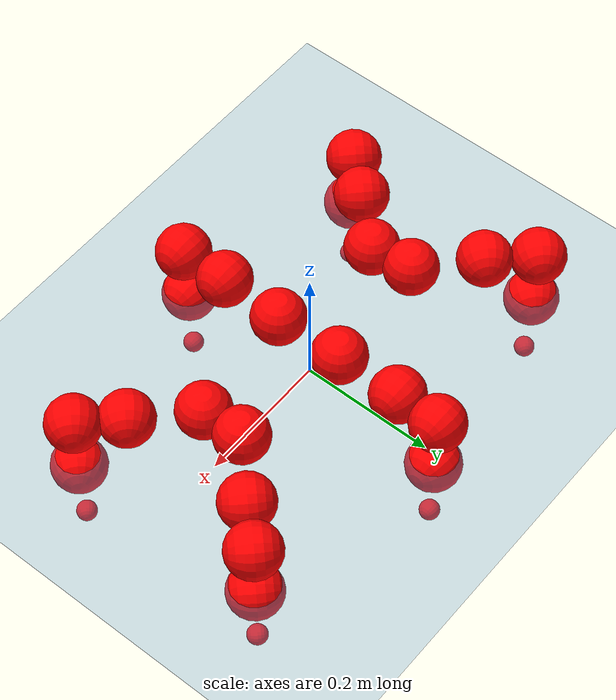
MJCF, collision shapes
<mujoco model="Golem">
  <compiler angle="radian" assetdir="assets" balanceinertia="true" inertiafromgeom="false"/>

  <option timestep="0.005" density="1.2" viscosity="2e-05"/>

  <size nkey="1"/>

  <visual>
    <quality shadowsize="8192"/>
    <map shadowclip="0.5"/>
  </visual>

  <default>
    <default class="/">
      <joint armature="0.01" damping="0.01" frictionloss="0.01"/>
      <geom contype="0" conaffinity="0" group="1" solref="-1000 -80"/>
      <site size="0.01 0.005 0.005" group="5"/>
      <general forcelimited="true" biastype="affine" gainprm="25" biasprm="0 -25 -0.5"/>
      <default class="visual">
        <geom type="mesh" group="2"/>
      </default>
      <default class="collision">
        <geom group="3"/>
      </default>
      <default class="foot">
        <geom size="0.01 0 0" condim="6" group="4" priority="1" solimp="0.015 1 0.01"/>
      </default>
      <default class="reward_collision_sphere">
        <geom group="5" rgba="1 0 0 1"/>
      </default>
    </default>
  </default>

  <asset>
    <texture type="skybox" colorspace="auto" name="//unnamed_texture_0" builtin="gradient" rgb1="0.95 0.95 0.95" rgb2="0.95 0.95 0.95" width="100" height="600"/>
    <texture type="2d" colorspace="auto" name="texplane" builtin="checker" rgb1="0.345 0.575 0.748" rgb2="0.345 0.575 0.748" markrgb="1 1 1" width="512" height="512"/>
    <material name="MatPlane" class="/" texture="texplane" texuniform="true" texrepeat="2 2" specular="0.9"/>
    <mesh name="body" class="/" file="body.stl" scale="0.001 0.001 0.001"/>
    <mesh name="coxa" class="/" file="coxa.stl" scale="0.001 0.001 0.001"/>
    <mesh name="femur" class="/" file="femur.stl" scale="0.001 0.001 0.001"/>
    <mesh name="tibia" class="/" file="tibia.stl" scale="0.001 0.001 0.001"/>
    <mesh name="tarsus" class="/" file="tarsus.stl" scale="0.001 0.001 0.001"/>
  </asset>

  <worldbody>
    <geom name="floor" class="/" size="100 100 0.125" type="plane" group="0" material="MatPlane"/>
    <light name="toplight_shadow" class="/" pos="0 0 5" dir="0.0990148 0.0990148 -0.990148" type="directional" ambient="0.04 0.04 0.04" diffuse="0.55 0.55 0.55" specular="0.12 0.12 0.12"/>
    <light name="toplight_fill" class="/" pos="0 0 5" dir="0.0990148 0.0990148 -0.990148" type="directional" castshadow="false" ambient="0.04 0.04 0.04" diffuse="0.3 0.3 0.3" specular="0.08 0.08 0.08"/>
    <body name="trunk" pos="-0.00247828 -0.00103721 -0.00117699" quat="1 -1.88328e-08 -1.07496e-05 2.90608e-05">
      <inertial pos="0.00311359 -0.000692182 -0.00022901" quat="0.999905 -0.00966186 -0.00794613 -0.0057068" mass="3.79273" diaginertia="0.0179283 0.0013285 0.0263354"/>
      <joint name="//unnamed_joint_0" type="free"/>
      <geom name="//unnamed_geom_1" class="/" pos="0 0 0.0774815" quat="1 0 0 0" type="mesh" rgba="0.9 0.9 0.9 1" mesh="body"/>
      <site name="imu" class="/" pos="0.141531 0.00486707 0.126096" size="0.0100141"/>
      <camera name="track" class="/" pos="0 -1.32995 0" quat="0.707107 0.707107 0 0" mode="trackcom"/>
      <camera name="ego_camera" class="/" pos="0.146719 0 0.121065" quat="-0.5 -0.5 0.5 0.5"/>
      <body name="coxa_RR" pos="-0.197604 -0.0547255 0.0765662" quat="0.382776 0.000131973 -9.22975e-06 -0.923841">
        <inertial pos="-0.000312677 -0.0013074 -0.000488081" quat="1 0.000651476 0.000414061 9.43244e-05" mass="0.201209" diaginertia="0.0175937 0.00132812 0.0263713"/>
        <joint name="coxa_joint_RR" class="/" pos="0 0 0" axis="-0.00144193 -0.000676144 -0.999999" stiffness="0.00773018" range="-3.13467 3.08273" armature="0.00861842" damping="0.00311427" frictionloss="0.00962711"/>
        <geom name="//unnamed_geom_2" class="/" type="mesh" rgba="0.2 0.2 0.2 1" mesh="coxa"/>
        <geom name="//unnamed_geom_3" class="reward_collision_sphere" size="0.0400565" pos="-0.0338583 0 0"/>
        <body name="femur_RR" pos="0.0647292 0.00279848 -0.00431855" quat="0.499903 -0.499978 0.500102 0.500017">
          <inertial pos="-0.000566926 0.00250054 -0.00275865" quat="0.999998 2.7934e-05 -0.00173453 -0.00102445" mass="0.203634" diaginertia="0.018559 0.00131881 0.0264026"/>
          <joint name="femur_joint_RR" class="/" pos="0 0 0" axis="0.000407713 0.00333543 -0.999994" range="-3.12517 3.10338" armature="0.00863845" damping="0.0109568" frictionloss="0.0114048"/>
          <geom name="//unnamed_geom_4" class="/" type="mesh" rgba="0.9 0.9 0.9 1" mesh="femur"/>
          <geom name="//unnamed_geom_5" class="reward_collision_sphere" size="0.0400565"/>
          <body name="tibia_RR" pos="-0.00013135 -0.0692069 0.00310776" quat="-0.000752094 0.999999 0.000917467 -0.000222307">
            <inertial pos="-0.00214988 -0.00254579 1.59405e-05" quat="0.999911 -0.00547256 0.0101552 -0.00677146" mass="0.201363" diaginertia="0.0177422 0.00131901 0.0262714"/>
            <joint name="tibia_joint_RR" class="/" pos="0 0 0" axis="-0.0106125 0.00595669 0.999926" stiffness="0.00933123" range="-3.16821 3.09594" armature="0.00877507" damping="0" frictionloss="0.00953466"/>
            <geom name="//unnamed_geom_6" class="/" type="mesh" rgba="0.2 0.2 0.2 1" mesh="tibia"/>
            <geom name="//unnamed_geom_7" class="reward_collision_sphere" size="0.0400565"/>
            <body name="tarsus_RR" pos="0.0997371 -0.00151952 -0.00268893" quat="1 -2.22547e-06 -0.000353159 -0.000126754">
              <inertial pos="0.0677615 0.002151 -0.0026049" quat="0.496513 0.508059 0.499288 0.496047" mass="0.200473" diaginertia="0.0183216 0.00133935 0.0259759"/>
              <joint name="tarsus_joint_RR" class="/" pos="0 0 0" axis="-0.00106449 -0.000569438 0.999999" stiffness="0.00153917" range="-3.15381 3.1323" armature="0.0115033" damping="0.00604464" frictionloss="0.0113044"/>
              <geom name="//unnamed_geom_8" class="/" type="mesh" rgba="0.9 0.9 0.9 1" mesh="tarsus"/>
              <geom name="foot_1" class="foot" size="0.00882656" pos="0.126404 0 0" quat="0 -0.707107 0 0.707107"/>
              <geom name="//unnamed_geom_10" class="reward_collision_sphere" size="0.0400565"/>
              <geom name="//unnamed_geom_11" class="reward_collision_sphere" size="0.0150212" pos="0.121326 0 0"/>
              <site name="foot_1" class="foot" pos="0.126404 0 0" quat="0 -0.707107 0 0.707107" size="0.0100141"/>
            </body>
          </body>
        </body>
      </body>
      <body name="coxa_RM" pos="0.000790158 -0.0883991 0.0772494" quat="0.707206 -0.000355194 0.000228319 -0.707008">
        <inertial pos="-0.00209304 0.000207676 -0.00201308" quat="0.999995 -0.000753305 0.00287409 0.000872108" mass="0.194713" diaginertia="0.0182207 0.00126606 0.0252127"/>
        <joint name="coxa_joint_RM" class="/" pos="0 0 0" axis="-0.000764811 -4.70809e-05 -1" range="-3.15522 3.12924" armature="0.00906877" damping="0.0195118" frictionloss="0.00986333"/>
        <geom name="//unnamed_geom_12" class="/" type="mesh" rgba="0.2 0.2 0.2 1" mesh="coxa"/>
        <geom name="//unnamed_geom_13" class="reward_collision_sphere" size="0.0400565" pos="-0.0338583 0 0"/>
        <body name="femur_RM" pos="0.0634152 -0.00154481 0.0024736" quat="0.49964 -0.500103 0.500766 0.49949">
          <inertial pos="0.00222242 -0.00240899 0.00193413" quat="0.999945 0.0056546 -0.0088133 -0.000558976" mass="0.207017" diaginertia="0.0189486 0.00129749 0.0271705"/>
          <joint name="femur_joint_RM" class="/" pos="0 0 0" axis="0.00156519 0.00505294 -0.999986" range="-3.13274 3.13096" armature="0.0097444" damping="0.00595175" frictionloss="0.00896241"/>
          <geom name="//unnamed_geom_14" class="/" type="mesh" rgba="0.9 0.9 0.9 1" mesh="femur"/>
          <geom name="//unnamed_geom_15" class="reward_collision_sphere" size="0.0400565"/>
          <body name="tibia_RM" pos="-0.00224375 -0.073433 0.0012503" quat="3.46733e-05 1 0.000125179 0.000189776">
            <inertial pos="-0.00200681 0.000339338 -0.000910236" quat="0.999998 -4.65789e-05 0.000429691 0.00191236" mass="0.204826" diaginertia="0.0184523 0.00131929 0.0273388"/>
            <joint name="tibia_joint_RM" class="/" pos="0 0 0" axis="-0.00341363 0.0131408 0.999908" range="-3.08422 3.1349" armature="0.0113034" damping="0.0049245" frictionloss="0.00951511"/>
            <geom name="//unnamed_geom_16" class="/" type="mesh" rgba="0.2 0.2 0.2 1" mesh="tibia"/>
            <geom name="//unnamed_geom_17" class="reward_collision_sphere" size="0.0400565"/>
            <body name="tarsus_RM" pos="0.0980945 -0.00160572 0.00343902" quat="0.999999 0.000897976 -0.000656579 0.000802911">
              <inertial pos="0.0699642 0.00126062 0.00226113" quat="0.49861 0.500249 0.501861 0.499274" mass="0.192059" diaginertia="0.0175898 0.00125952 0.0242988"/>
              <joint name="tarsus_joint_RM" class="/" pos="0 0 0" axis="-0.00276569 0.0141231 0.999896" range="-3.13339 3.13681" armature="0.0114225" damping="0.00965367" frictionloss="0.00986717"/>
              <geom name="//unnamed_geom_18" class="/" type="mesh" rgba="0.9 0.9 0.9 1" mesh="tarsus"/>
              <geom name="foot_2" class="foot" size="0.0108277" pos="0.126404 0 0" quat="0 -0.707107 0 0.707107"/>
              <geom name="//unnamed_geom_20" class="reward_collision_sphere" size="0.0400565"/>
              <geom name="//unnamed_geom_21" class="reward_collision_sphere" size="0.0150212" pos="0.121326 0 0"/>
              <site name="foot_2" class="foot" pos="0.126404 0 0" quat="0 -0.707107 0 0.707107" size="0.0100141"/>
            </body>
          </body>
        </body>
      </body>
      <body name="coxa_RF" pos="0.203879 -0.0578758 0.0776367" quat="0.923587 -0.00113447 0.000104995 -0.383388">
        <inertial pos="-0.00198095 0.000573744 0.00247169" quat="0.999903 0.00998587 -0.00813066 -0.00535244" mass="0.205064" diaginertia="0.0177176 0.00130139 0.0251678"/>
        <joint name="coxa_joint_RF" class="/" pos="0 0 0" axis="-0.00471496 0.00816469 -0.999956" range="-3.19541 3.13499" armature="0.0086327" damping="0.0225616" frictionloss="0.0114344"/>
        <geom name="//unnamed_geom_22" class="/" type="mesh" rgba="0.2 0.2 0.2 1" mesh="coxa"/>
        <geom name="//unnamed_geom_23" class="reward_collision_sphere" size="0.0400565" pos="-0.0338583 0 0"/>
        <body name="femur_RF" pos="0.0680271 0.000390365 -0.00339731" quat="0.500649 -0.500074 0.50011 0.499166">
          <inertial pos="0.000746111 -0.00270287 -0.000670681" quat="0.999993 0.00284237 -0.000621004 -0.00219239" mass="0.19374" diaginertia="0.0185109 0.00126792 0.0249184"/>
          <joint name="femur_joint_RF" class="/" pos="0 0 0" axis="-0.00285135 0.00265527 -0.999992" stiffness="0.00053413" range="-3.09711 3.10797" armature="0.00986549" damping="0" frictionloss="0.00962461"/>
          <geom name="//unnamed_geom_24" class="/" type="mesh" rgba="0.9 0.9 0.9 1" mesh="femur"/>
          <geom name="//unnamed_geom_25" class="reward_collision_sphere" size="0.0400565"/>
          <body name="tibia_RF" pos="-0.000546504 -0.0701694 0.00108002" quat="-3.50346e-05 1 1.73313e-06 -1.26084e-05">
            <inertial pos="-0.00141756 -0.000328563 0.000127161" quat="0.999988 0.000319329 -0.0019883 -0.00455956" mass="0.191365" diaginertia="0.0170947 0.00125249 0.0251455"/>
            <joint name="tibia_joint_RF" class="/" pos="0 0 0" axis="0.0127463 -0.00659636 0.999897" range="-3.08385 3.12086" armature="0.00977306" damping="0" frictionloss="0.0114215"/>
            <geom name="//unnamed_geom_26" class="/" type="mesh" rgba="0.2 0.2 0.2 1" mesh="tibia"/>
            <geom name="//unnamed_geom_27" class="reward_collision_sphere" size="0.0400565"/>
            <body name="tarsus_RF" pos="0.0996356 0.000707529 -0.00185269" quat="0.999999 0.00132571 0.000335092 -0.000133295">
              <inertial pos="0.0659358 -0.00285436 0.000863891" quat="0.498575 0.499679 0.500928 0.500815" mass="0.194996" diaginertia="0.0177394 0.00130125 0.0248086"/>
              <joint name="tarsus_joint_RF" class="/" pos="0 0 0" axis="0.0141831 -0.000981644 0.999899" range="-3.15567 3.1489" armature="0.00941735" damping="0" frictionloss="0.00890861"/>
              <geom name="//unnamed_geom_28" class="/" type="mesh" rgba="0.9 0.9 0.9 1" mesh="tarsus"/>
              <geom name="foot_3" class="foot" size="0.00991947" pos="0.126404 0 0" quat="0 -0.707107 0 0.707107"/>
              <geom name="//unnamed_geom_30" class="reward_collision_sphere" size="0.0400565"/>
              <geom name="//unnamed_geom_31" class="reward_collision_sphere" size="0.0150212" pos="0.121326 0 0"/>
              <site name="foot_3" class="foot" pos="0.126404 0 0" quat="0 -0.707107 0 0.707107" size="0.0100141"/>
            </body>
          </body>
        </body>
      </body>
      <body name="coxa_LR" pos="-0.20429 0.0565091 0.0761979" quat="0.382883 -0.000220614 -0.00030731 0.923797">
        <inertial pos="0.00230154 0.000376854 0.00122033" quat="0.999978 -0.00253268 -0.00527838 0.00314383" mass="0.197591" diaginertia="0.0185041 0.00134899 0.0260417"/>
        <joint name="coxa_joint_LR" class="/" pos="0 0 0" axis="0.0179782 0.00560054 -0.999823" stiffness="0.0183578" range="-3.13472 3.18909" armature="0.0113505" damping="0.0026839" frictionloss="0.0109545"/>
        <geom name="//unnamed_geom_32" class="/" type="mesh" rgba="0.2 0.2 0.2 1" mesh="coxa"/>
        <geom name="//unnamed_geom_33" class="reward_collision_sphere" size="0.0400565" pos="-0.0338583 0 0"/>
        <body name="femur_LR" pos="0.0688025 0.00232681 0.00231267" quat="0.4997 -0.499322 0.49993 0.501047">
          <inertial pos="-0.00214875 -0.00147148 0.00145432" quat="0.999999 -0.000700632 -0.000571474 0.000522928" mass="0.211723" diaginertia="0.0195672 0.00137686 0.0263316"/>
          <joint name="femur_joint_LR" class="/" pos="0 0 0" axis="0.00600729 -0.00233179 0.999979" range="-3.19564 3.086" armature="0.010097" damping="0" frictionloss="0.00886907"/>
          <geom name="//unnamed_geom_34" class="/" type="mesh" rgba="0.9 0.9 0.9 1" mesh="femur"/>
          <geom name="//unnamed_geom_35" class="reward_collision_sphere" size="0.0400565"/>
          <body name="tibia_LR" pos="0.00025643 -0.0749878 -0.00253123" quat="-0.000171359 1 -0.000643778 2.1644e-05">
            <inertial pos="-2.59734e-05 -0.00150402 0.000971363" quat="0.99991 -0.0057928 0.00491154 0.0110647" mass="0.187557" diaginertia="0.0170548 0.00129873 0.0247452"/>
            <joint name="tibia_joint_LR" class="/" pos="0 0 0" axis="-0.000210813 0.0089446 -0.99996" range="-3.13128 3.1004" armature="0.00989672" damping="0.00672906" frictionloss="0.0114116"/>
            <geom name="//unnamed_geom_36" class="/" type="mesh" rgba="0.2 0.2 0.2 1" mesh="tibia"/>
            <geom name="//unnamed_geom_37" class="reward_collision_sphere" size="0.0400565"/>
            <body name="tarsus_LR" pos="0.0996845 -0.00124889 -0.00242844" quat="0.999999 0.00137848 0.000328759 -1.85766e-05">
              <inertial pos="0.064649 0.00299469 -0.00253439" quat="0.496264 0.502917 0.500254 0.500542" mass="0.194954" diaginertia="0.0182908 0.00135466 0.0263942"/>
              <joint name="tarsus_joint_LR" class="/" pos="0 0 0" axis="-0.00634759 0.000947032 -0.999979" range="-3.19369 3.15386" armature="0.00880172" damping="0.0283125" frictionloss="0.010463"/>
              <geom name="//unnamed_geom_38" class="/" type="mesh" rgba="0.9 0.9 0.9 1" mesh="tarsus"/>
              <geom name="foot_4" class="foot" size="0.0102489" pos="0.126404 0 0" quat="0.707107 0 -0.707107 0"/>
              <geom name="//unnamed_geom_40" class="reward_collision_sphere" size="0.0400565"/>
              <geom name="//unnamed_geom_41" class="reward_collision_sphere" size="0.0150212" pos="0.121326 0 0"/>
              <site name="foot_4" class="foot" pos="0.126404 0 0" quat="0.707107 0 -0.707107 0" size="0.0100141"/>
            </body>
          </body>
        </body>
      </body>
      <body name="coxa_LM" pos="0.000777303 0.084826 0.0812527" quat="0.706927 -0.000325306 -0.000258511 0.707287">
        <inertial pos="0.00313202 0.00190866 0.00256274" quat="0.999908 -0.0106462 0.00657941 0.00519653" mass="0.19765" diaginertia="0.0191028 0.00127665 0.0267251"/>
        <joint name="coxa_joint_LM" class="/" pos="0 0 0" axis="-0.00100661 0.00794862 -0.999968" range="-3.08955 3.15541" armature="0.010044" damping="0.00164839" frictionloss="0.00998554"/>
        <geom name="//unnamed_geom_42" class="/" type="mesh" rgba="0.2 0.2 0.2 1" mesh="coxa"/>
        <geom name="//unnamed_geom_43" class="reward_collision_sphere" size="0.0400565" pos="-0.0338583 0 0"/>
        <body name="femur_LM" pos="0.0653301 -0.000493309 -0.000326874" quat="0.499725 -0.500735 0.500277 0.499262">
          <inertial pos="0.00271722 0.00026149 -0.00280314" quat="0.999998 0.000335787 -0.000919766 -0.00153759" mass="0.210917" diaginertia="0.0187708 0.00133601 0.0276727"/>
          <joint name="femur_joint_LM" class="/" pos="0 0 0" axis="0.0054184 -0.011566 0.999918" stiffness="0.00208317" range="-3.17257 3.10522" armature="0.0108196" damping="0.014479" frictionloss="0.0114105"/>
          <geom name="//unnamed_geom_44" class="/" type="mesh" rgba="0.9 0.9 0.9 1" mesh="femur"/>
          <geom name="//unnamed_geom_45" class="reward_collision_sphere" size="0.0400565"/>
          <body name="tibia_LM" pos="0.00109745 -0.0682532 -0.00225905" quat="-0.000517557 1 -0.000167112 0.000597723">
            <inertial pos="0.00301926 0.00198837 -0.0007523" quat="0.999949 -0.00872158 -0.00273615 0.00425523" mass="0.21387" diaginertia="0.0189819 0.00133181 0.0278756"/>
            <joint name="tibia_joint_LM" class="/" pos="0 0 0" axis="-0.00329817 0.013783 -0.9999" stiffness="0.00150936" range="-3.12462 3.14472" armature="0.00903579" damping="0" frictionloss="0.0103284"/>
            <geom name="//unnamed_geom_46" class="/" type="mesh" rgba="0.2 0.2 0.2 1" mesh="tibia"/>
            <geom name="//unnamed_geom_47" class="reward_collision_sphere" size="0.0400565"/>
            <body name="tarsus_LM" pos="0.100225 -0.00158798 -0.000249442" quat="1 -0.000100581 0.000185651 -4.53759e-05">
              <inertial pos="0.0679655 0.000832758 0.00244403" quat="0.498166 0.496109 0.511174 0.494375" mass="0.194225" diaginertia="0.0180609 0.0013379 0.0258635"/>
              <joint name="tarsus_joint_LM" class="/" pos="0 0 0" axis="0.00714979 -0.00227255 -0.999972" range="-3.17509 3.11909" armature="0.0103268" damping="0.0192601" frictionloss="0.0101038"/>
              <geom name="//unnamed_geom_48" class="/" type="mesh" rgba="0.9 0.9 0.9 1" mesh="tarsus"/>
              <geom name="foot_5" class="foot" size="0.00986048" pos="0.126404 0 0" quat="0.707107 0 -0.707107 0"/>
              <geom name="//unnamed_geom_50" class="reward_collision_sphere" size="0.0400565"/>
              <geom name="//unnamed_geom_51" class="reward_collision_sphere" size="0.0150212" pos="0.121326 0 0"/>
              <site name="foot_5" class="foot" pos="0.126404 0 0" quat="0.707107 0 -0.707107 0" size="0.0100141"/>
            </body>
          </body>
        </body>
      </body>
      <body name="coxa_LF" pos="0.202505 0.0542469 0.0790622" quat="0.923753 -0.000431087 -0.000513428 0.382988">
        <inertial pos="-0.000622079 0.000247926 0.00260214" quat="0.999984 -0.00563609 -0.000309679 -0.000794432" mass="0.196459" diaginertia="0.0184267 0.00126169 0.0252317"/>
        <joint name="coxa_joint_LF" class="/" pos="0 0 0" axis="0.0106298 0.00752227 -0.999915" range="-3.13797 3.12317" armature="0.00967142" damping="0.0288986" frictionloss="0.00882196"/>
        <geom name="//unnamed_geom_52" class="/" type="mesh" rgba="0.2 0.2 0.2 1" mesh="coxa"/>
        <geom name="//unnamed_geom_53" class="reward_collision_sphere" size="0.0400565" pos="-0.0338583 0 0"/>
        <body name="femur_LF" pos="0.0688429 -0.00202166 0.00137699" quat="0.499999 -0.499203 0.499911 0.500886">
          <inertial pos="0.00059636 -0.000587999 0.00167973" quat="0.999903 0.0118018 -0.00677056 0.00309151" mass="0.201949" diaginertia="0.0177844 0.00128956 0.0261674"/>
          <joint name="femur_joint_LF" class="/" pos="0 0 0" axis="-0.014438 0.00313687 0.999891" range="-3.15443 3.14275" armature="0.00990082" damping="0" frictionloss="0.0110348"/>
          <geom name="//unnamed_geom_54" class="/" type="mesh" rgba="0.9 0.9 0.9 1" mesh="femur"/>
          <geom name="//unnamed_geom_55" class="reward_collision_sphere" size="0.0400565"/>
          <body name="tibia_LF" pos="-0.00170346 -0.0730849 0.0018939" quat="0.000294173 1 -0.000486152 -0.000161784">
            <inertial pos="0.000277268 -0.00152094 -0.00199558" quat="0.999975 0.000256986 0.00625183 0.00327236" mass="0.205441" diaginertia="0.0192744 0.00129474 0.0259491"/>
            <joint name="tibia_joint_LF" class="/" pos="0 0 0" axis="0.00124578 -0.00048236 -0.999999" range="-3.13242 3.18847" armature="0.010292" damping="0.0106513" frictionloss="0.00997469"/>
            <geom name="//unnamed_geom_56" class="/" type="mesh" rgba="0.2 0.2 0.2 1" mesh="tibia"/>
            <geom name="//unnamed_geom_57" class="reward_collision_sphere" size="0.0400565"/>
            <body name="tarsus_LF" pos="0.0999571 0.00291628 0.000269876" quat="0.999999 -8.11724e-05 0.000924647 0.000988435">
              <inertial pos="0.0668776 -0.00116831 -0.000321593" quat="0.500156 0.501058 0.499716 0.499068" mass="0.187549" diaginertia="0.0171298 0.00121353 0.0254849"/>
              <joint name="tarsus_joint_LF" class="/" pos="0 0 0" axis="-0.0076824 -0.00791809 -0.999939" range="-3.15209 3.09106" armature="0.0110702" damping="0.027841" frictionloss="0.01033"/>
              <geom name="//unnamed_geom_58" class="/" type="mesh" rgba="0.9 0.9 0.9 1" mesh="tarsus"/>
              <geom name="foot_6" class="foot" size="0.0105347" pos="0.126404 0 0" quat="0.707107 0 -0.707107 0"/>
              <geom name="//unnamed_geom_60" class="reward_collision_sphere" size="0.0400565"/>
              <geom name="//unnamed_geom_61" class="reward_collision_sphere" size="0.0150212" pos="0.121326 0 0"/>
              <site name="foot_6" class="foot" pos="0.126404 0 0" quat="0.707107 0 -0.707107 0" size="0.0100141"/>
            </body>
          </body>
        </body>
      </body>
    </body>
  </worldbody>

  <contact>
    <pair class="/" geom1="floor" geom2="foot_1" name="//unnamed_contact_0"/>
    <pair class="/" geom1="floor" geom2="foot_2" name="//unnamed_contact_1"/>
    <pair class="/" geom1="floor" geom2="foot_3" name="//unnamed_contact_2"/>
    <pair class="/" geom1="floor" geom2="foot_4" name="//unnamed_contact_3"/>
    <pair class="/" geom1="floor" geom2="foot_5" name="//unnamed_contact_4"/>
    <pair class="/" geom1="floor" geom2="foot_6" name="//unnamed_contact_5"/>
  </contact>

  <actuator>
    <general name="coxa_joint_RR" class="/" joint="coxa_joint_RR" forcerange="-8.08927 8.08927" gainprm="23.7905" biasprm="0 -23.7905 -0.521248"/>
    <general name="femur_joint_RR" class="/" joint="femur_joint_RR" forcerange="-8.04998 8.04998" gainprm="23.7905" biasprm="0 -23.7905 -0.521248"/>
    <general name="tibia_joint_RR" class="/" joint="tibia_joint_RR" forcerange="-6.59711 6.59711" gainprm="23.7905" biasprm="0 -23.7905 -0.521248"/>
    <general name="tarsus_joint_RR" class="/" joint="tarsus_joint_RR" forcerange="-6.65771 6.65771" gainprm="23.7905" biasprm="0 -23.7905 -0.521248"/>
    <general name="coxa_joint_RM" class="/" joint="coxa_joint_RM" forcerange="-6.85963 6.85963" gainprm="23.7905" biasprm="0 -23.7905 -0.521248"/>
    <general name="femur_joint_RM" class="/" joint="femur_joint_RM" forcerange="-7.29702 7.29702" gainprm="23.7905" biasprm="0 -23.7905 -0.521248"/>
    <general name="tibia_joint_RM" class="/" joint="tibia_joint_RM" forcerange="-7.30288 7.30288" gainprm="23.7905" biasprm="0 -23.7905 -0.521248"/>
    <general name="tarsus_joint_RM" class="/" joint="tarsus_joint_RM" forcerange="-7.57444 7.57444" gainprm="23.7905" biasprm="0 -23.7905 -0.521248"/>
    <general name="coxa_joint_RF" class="/" joint="coxa_joint_RF" forcerange="-7.04614 7.04614" gainprm="23.7905" biasprm="0 -23.7905 -0.521248"/>
    <general name="femur_joint_RF" class="/" joint="femur_joint_RF" forcerange="-7.43737 7.43737" gainprm="23.7905" biasprm="0 -23.7905 -0.521248"/>
    <general name="tibia_joint_RF" class="/" joint="tibia_joint_RF" forcerange="-7.71616 7.71616" gainprm="23.7905" biasprm="0 -23.7905 -0.521248"/>
    <general name="tarsus_joint_RF" class="/" joint="tarsus_joint_RF" forcerange="-7.82411 7.82411" gainprm="23.7905" biasprm="0 -23.7905 -0.521248"/>
    <general name="coxa_joint_LR" class="/" joint="coxa_joint_LR" forcerange="-7.32804 7.32804" gainprm="23.7905" biasprm="0 -23.7905 -0.521248"/>
    <general name="femur_joint_LR" class="/" joint="femur_joint_LR" forcerange="-7.28543 7.28543" gainprm="23.7905" biasprm="0 -23.7905 -0.521248"/>
    <general name="tibia_joint_LR" class="/" joint="tibia_joint_LR" forcerange="-7.5089 7.5089" gainprm="23.7905" biasprm="0 -23.7905 -0.521248"/>
    <general name="tarsus_joint_LR" class="/" joint="tarsus_joint_LR" forcerange="-7.71565 7.71565" gainprm="23.7905" biasprm="0 -23.7905 -0.521248"/>
    <general name="coxa_joint_LM" class="/" joint="coxa_joint_LM" forcerange="-7.03723 7.03723" gainprm="23.7905" biasprm="0 -23.7905 -0.521248"/>
    <general name="femur_joint_LM" class="/" joint="femur_joint_LM" forcerange="-7.54246 7.54246" gainprm="23.7905" biasprm="0 -23.7905 -0.521248"/>
    <general name="tibia_joint_LM" class="/" joint="tibia_joint_LM" forcerange="-7.34488 7.34488" gainprm="23.7905" biasprm="0 -23.7905 -0.521248"/>
    <general name="tarsus_joint_LM" class="/" joint="tarsus_joint_LM" forcerange="-6.71456 6.71456" gainprm="23.7905" biasprm="0 -23.7905 -0.521248"/>
    <general name="coxa_joint_LF" class="/" joint="coxa_joint_LF" forcerange="-7.18604 7.18604" gainprm="23.7905" biasprm="0 -23.7905 -0.521248"/>
    <general name="femur_joint_LF" class="/" joint="femur_joint_LF" forcerange="-7.85943 7.85943" gainprm="23.7905" biasprm="0 -23.7905 -0.521248"/>
    <general name="tibia_joint_LF" class="/" joint="tibia_joint_LF" forcerange="-7.94134 7.94134" gainprm="23.7905" biasprm="0 -23.7905 -0.521248"/>
    <general name="tarsus_joint_LF" class="/" joint="tarsus_joint_LF" forcerange="-7.05988 7.05988" gainprm="23.7905" biasprm="0 -23.7905 -0.521248"/>
  </actuator>

  <sensor>
    <gyro site="imu" name="imu_angular_velocity"/>
    <velocimeter site="imu" name="imu_linear_velocity"/>
    <framelinvel objtype="site" objname="foot_1" name="foot_1_global_linear_velocity"/>
    <framelinvel objtype="site" objname="foot_2" name="foot_2_global_linear_velocity"/>
    <framelinvel objtype="site" objname="foot_3" name="foot_3_global_linear_velocity"/>
    <framelinvel objtype="site" objname="foot_4" name="foot_4_global_linear_velocity"/>
    <framelinvel objtype="site" objname="foot_5" name="foot_5_global_linear_velocity"/>
    <framelinvel objtype="site" objname="foot_6" name="foot_6_global_linear_velocity"/>
  </sensor>

  <keyframe>
    <key name="home" qpos="0 0 0.1457 1 0 0 0 0 0 0 0 0 0 0 0 0 0 0 0 0 0 0 0 0 0 0 0 0 0 0 0"/>
  </keyframe>
</mujoco>
